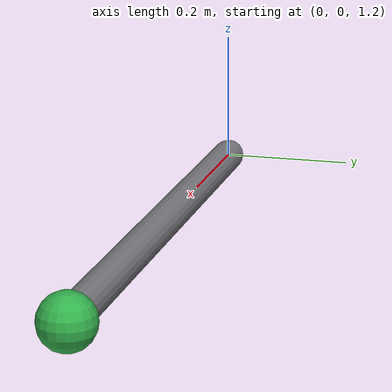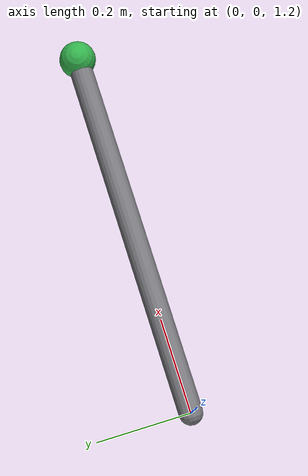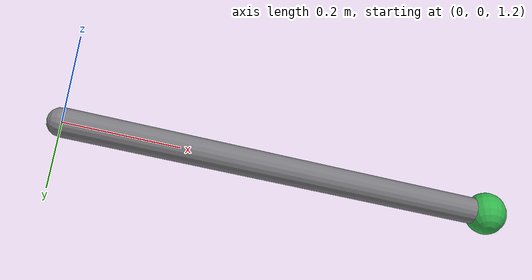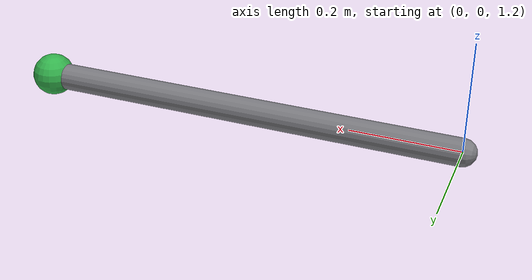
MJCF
<mujoco model="force-torque">
    <compiler angle="radian"/>
    <option gravity="0 0 -9.81" timestep="0.001">
        <flag energy="enable"/>
    </option>

    <default>
        <geom contype="0" conaffinity="0"/>
    </default>

    <worldbody>
        <body name="beam" pos="0 0 1.2">
            <joint name="hinge" type="hinge" axis="0 1 0" damping="50"/>
            <geom name="shaft" type="capsule" size="0.025"
                  fromto="0 0 0 0.8 0 0" mass="1.0" rgba="0.48 0.48 0.50 1"/>
            <geom name="tip_ball" type="sphere" size="0.04"
                  pos="0.8 0 0" rgba="0.2 0.7 0.3 1" mass="0.001"/>
            <site name="base" pos="0 0 0"/>
        </body>
    </worldbody>

    <actuator>
        <position name="motor" joint="hinge" kp="5000"/>
    </actuator>

    <sensor>
        <force name="base_force" site="base"/>
        <torque name="base_torque" site="base"/>
    </sensor>
</mujoco>
